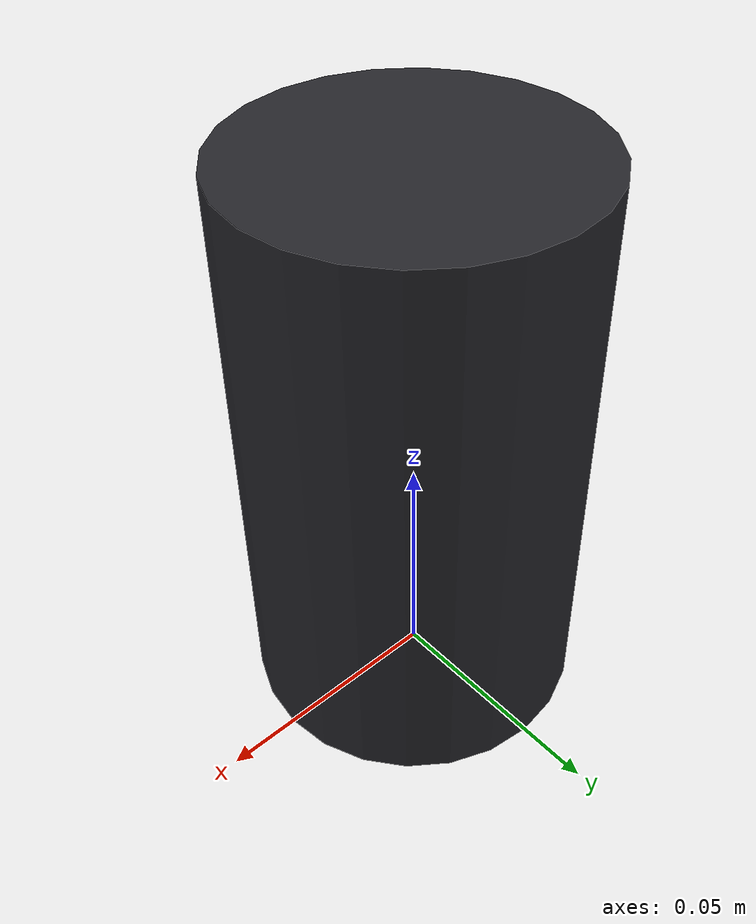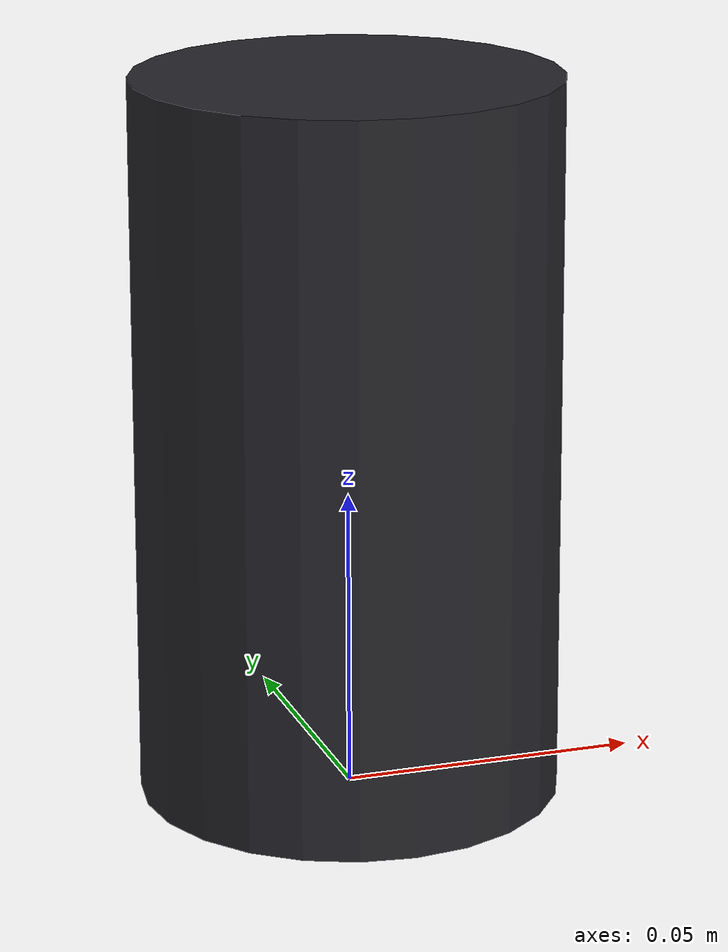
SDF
<?xml version="1.0"?>
<sdf version="1.9">
  <model name="robosub_pinger">
    <static>true</static>
    <plugin filename="gz-sim-label-system" name="gz::sim::systems::Label">
      <label>20</label>
    </plugin>
    <link name="body">
      <pose>0 0 0.06 0 0 0</pose>
      <inertial>
        <pose>0 0 0 0 0 0</pose>
        <mass>0.5</mass>
        <inertia>
          <ixx>0.000753125</ixx><ixy>0</ixy><ixz>0</ixz>
          <iyy>0.000753125</iyy><iyz>0</iyz>
          <izz>0.00030625</izz>
        </inertia>
      </inertial>
      <visual name="body_visual">
        <pose>0 0 0 0 0 0</pose>
        <geometry><cylinder><radius>0.035</radius><length>0.12</length></cylinder></geometry>
        <material>
          <ambient>0.15 0.15 0.17 1</ambient>
          <diffuse>0.15 0.15 0.17 1</diffuse>
          <specular>0.14 0.14 0.14 1</specular>
          <emissive>0.1 0.1 0.1 1</emissive>
          <pbr>
            <metal>
              <albedo_map>model://robosub_textures/albedo_plastic.png</albedo_map>
              <metalness>0.0</metalness>
              <roughness_map>model://robosub_textures/rough_plastic.png</roughness_map>
              <normal_map>model://robosub_textures/norm_plastic.png</normal_map>
            </metal>
          </pbr>
        </material>
      </visual>
      <collision name="body_collision">
        <pose>0 0 0 0 0 0</pose>
        <geometry><cylinder><radius>0.035</radius><length>0.12</length></cylinder></geometry>
      </collision>
    </link>
  </model>
</sdf>
